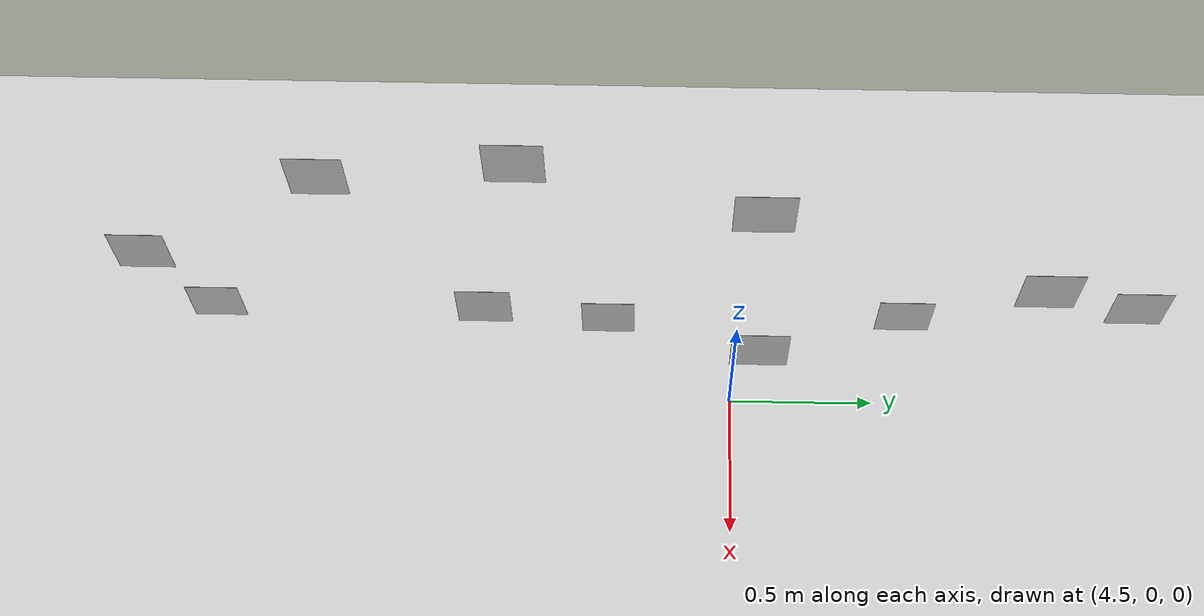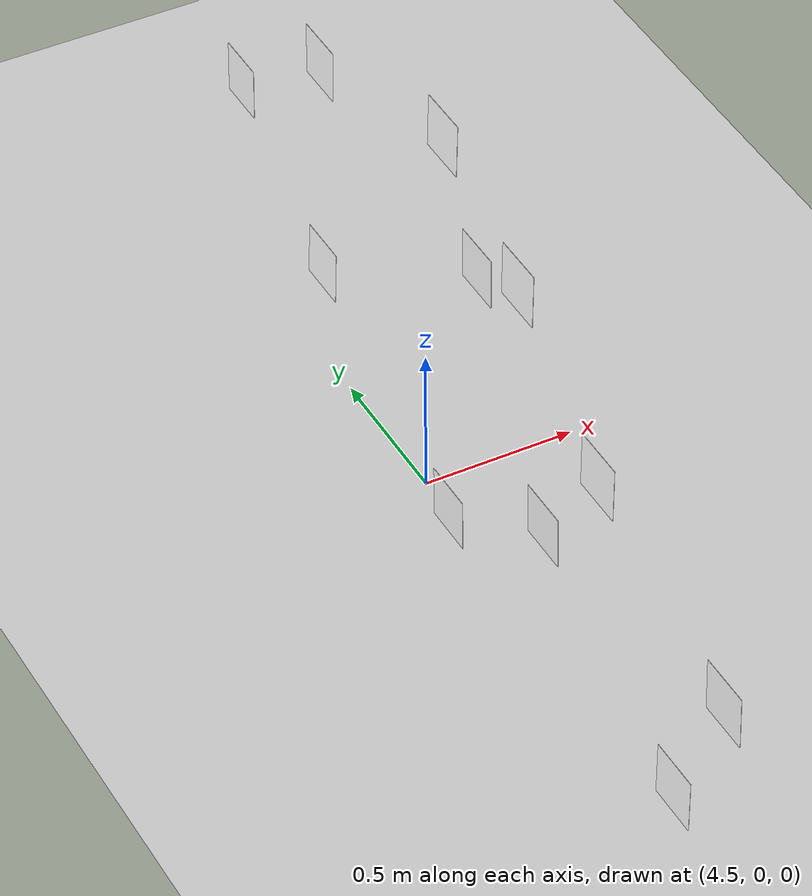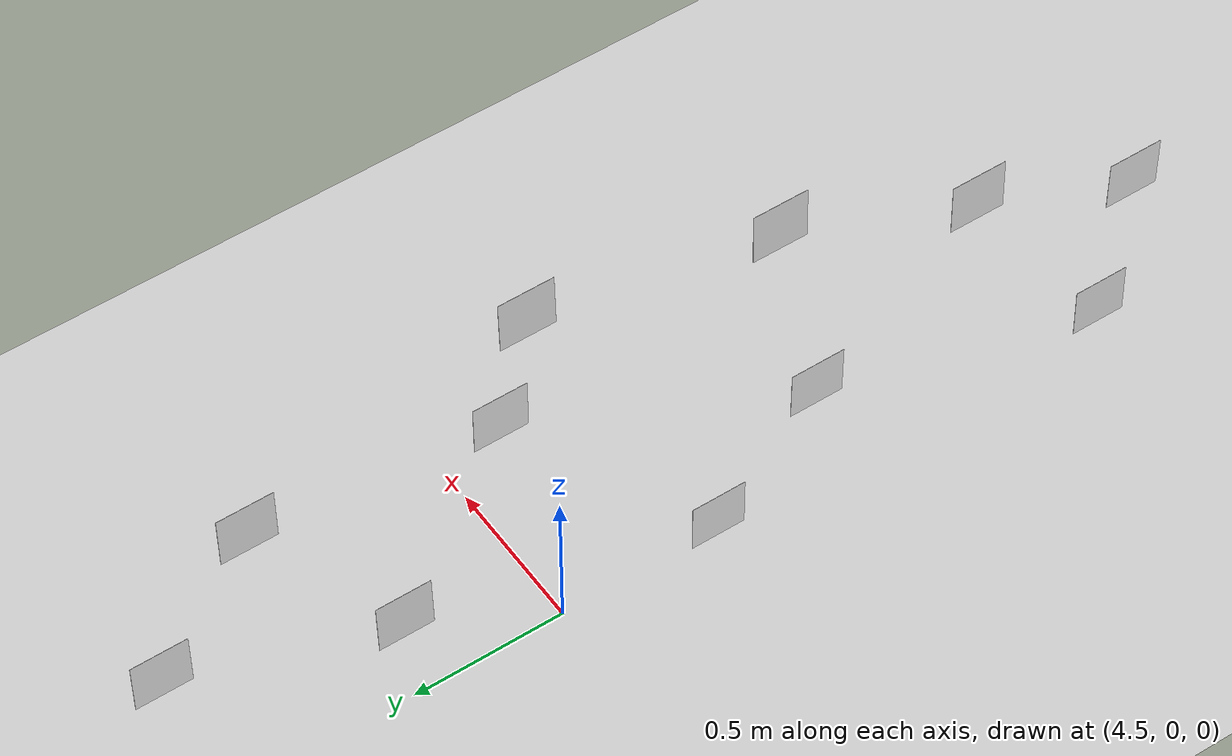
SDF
<sdf version="1.7">
 <world name="default">
  <physics name="normal" type="ode">
   <real_time_update_rate>1000</real_time_update_rate>
   <max_step_size>0.001</max_step_size>
   <real_time_factor>1</real_time_factor>
  </physics>
  <model name="ground_plane">
   <static>1</static>
   <link name="link">
    <collision name="collision">
     <geometry><plane><normal>0 0 1</normal><size>100 100</size></plane></geometry>
     <surface>
      <contact><collide_bitmask>65535</collide_bitmask></contact>
      <friction><ode><mu>100</mu><mu2>50</mu2></ode></friction>
     </surface>
    </collision>
    <visual name="visual">
     <cast_shadows>0</cast_shadows>
     <geometry><plane><normal>0 0 1</normal><size>100 100</size></plane></geometry>
     <material>
      <script><uri>file://media/materials/scripts/gazebo.material</uri><name>Gazebo/Grey</name></script>
     </material>
    </visual>
   </link>
  </model>
  <light name="sun" type="directional">
   <pose>0 0 10 0 -0 0</pose>
   <diffuse>0.8 0.8 0.8 1</diffuse>
   <specular>0.2 0.2 0.2 1</specular>
   <attenuation>
    <range>1000</range>
    <constant>0.9</constant>
    <linear>0.01</linear>
    <quadratic>0.001</quadratic>
   </attenuation>
   <direction>-0.5 0.1 -0.9</direction>
   <spot><inner_angle>0</inner_angle><outer_angle>0</outer_angle><falloff>0</falloff></spot>
  </light>
  <gravity>0 0 -9.8</gravity>
  <magnetic_field>6e-06 2.3e-05 -4.2e-05</magnetic_field>
  <atmosphere type="adiabatic"/>
  <scene><ambient>0.4 0.4 0.4 1</ambient><background>0.7 0.7 0.7 1</background><shadows>1</shadows></scene>
  <spherical_coordinates>
   <surface_model>EARTH_WGS84</surface_model>
   <latitude_deg>0</latitude_deg>
   <longitude_deg>0</longitude_deg>
   <elevation>0</elevation>
   <heading_deg>0</heading_deg>
  </spherical_coordinates>
  <model name="marker_0">
   <link name="marker">
    <visual name="visual">
     <geometry><box><size>0.1778 0.1778 1e-05</size></box></geometry>
     <material>
      <script>
       <uri>model://marker_0/materials/scripts</uri>
       <uri>model://marker_0/materials/textures</uri>
       <name>ArucoVisualMarker0/Marker</name>
      </script>
      <ambient>1 1 1 1</ambient>
      <diffuse>1 1 1 1</diffuse>
      <specular>0 0 0 1</specular>
      <emissive>1 1 1 0</emissive>
      <shader type="vertex"><normal_map>__default__</normal_map></shader>
     </material>
    </visual>
    <collision name="collision"><geometry><box><size>0.1778 0.1778 1e-05</size></box></geometry></collision>
   </link>
   <link name="marker_pad">
    <pose relative_to="marker">0 0 -0.001 0 -0 0</pose>
    <visual name="visual">
     <geometry><box><size>0.1778 0.1778 1e-05</size></box></geometry>
     <material>
      <lighting>1</lighting>
      <script><uri>file://media/materials/scripts/gazebo.material</uri><name>Gazebo/White</name></script>
      <ambient>0.3 0.3 0.3 1</ambient>
      <diffuse>0.7 0.7 0.7 1</diffuse>
      <specular>0.01 0.01 0.01 1</specular>
      <emissive>1 1 1 0</emissive>
      <shader type="vertex"><normal_map>__default__</normal_map></shader>
     </material>
    </visual>
    <collision name="collision"><geometry><box><size>0.1778 0.1778 1e-05</size></box></geometry></collision>
   </link>
   <joint name="marker_JOINT_marker_pad" type="revolute">
    <parent>marker</parent>
    <child>marker_pad</child>
    <axis>
     <xyz>0 0 1</xyz>
     <limit><upper>0</upper><lower>0</lower></limit>
     <dynamics><spring_reference>0</spring_reference><spring_stiffness>0</spring_stiffness></dynamics>
    </axis>
   </joint>
   <static>1</static>
   <pose>4.57715 0.036051 1.27944 0 -1.5429 0</pose>
  </model>
  <model name="marker_1">
   <link name="marker">
    <visual name="visual">
     <geometry><box><size>0.1778 0.1778 1e-05</size></box></geometry>
     <material>
      <script>
       <uri>model://marker_1/materials/scripts</uri>
       <uri>model://marker_1/materials/textures</uri>
       <name>ArucoVisualMarker1/Marker</name>
      </script>
      <ambient>1 1 1 1</ambient>
      <diffuse>1 1 1 1</diffuse>
      <specular>0 0 0 1</specular>
      <emissive>1 1 1 0</emissive>
      <shader type="vertex"><normal_map>__default__</normal_map></shader>
     </material>
    </visual>
    <collision name="collision"><geometry><box><size>0.1778 0.1778 1e-05</size></box></geometry></collision>
   </link>
   <link name="marker_pad">
    <pose relative_to="marker">0 0 -0.001 0 -0 0</pose>
    <visual name="visual">
     <geometry><box><size>0.1778 0.1778 1e-05</size></box></geometry>
     <material>
      <lighting>1</lighting>
      <script><uri>file://media/materials/scripts/gazebo.material</uri><name>Gazebo/White</name></script>
      <ambient>0.3 0.3 0.3 1</ambient>
      <diffuse>0.7 0.7 0.7 1</diffuse>
      <specular>0.01 0.01 0.01 1</specular>
      <emissive>1 1 1 0</emissive>
      <shader type="vertex"><normal_map>__default__</normal_map></shader>
     </material>
    </visual>
    <collision name="collision"><geometry><box><size>0.1778 0.1778 1e-05</size></box></geometry></collision>
   </link>
   <joint name="marker_JOINT_marker_pad" type="revolute">
    <parent>marker</parent>
    <child>marker_pad</child>
    <axis>
     <xyz>0 0 1</xyz>
     <limit><upper>0</upper><lower>0</lower></limit>
     <dynamics><spring_reference>0</spring_reference><spring_stiffness>0</spring_stiffness></dynamics>
    </axis>
   </joint>
   <static>1</static>
   <pose>4.43161 -0.678154 1.29908 0 -1.55273 0</pose>
  </model>
  <model name="marker_2">
   <link name="marker">
    <visual name="visual">
     <geometry><box><size>0.1778 0.1778 1e-05</size></box></geometry>
     <material>
      <script>
       <uri>model://marker_2/materials/scripts</uri>
       <uri>model://marker_2/materials/textures</uri>
       <name>ArucoVisualMarker2/Marker</name>
      </script>
      <ambient>1 1 1 1</ambient>
      <diffuse>1 1 1 1</diffuse>
      <specular>0 0 0 1</specular>
      <emissive>1 1 1 0</emissive>
      <shader type="vertex"><normal_map>__default__</normal_map></shader>
     </material>
    </visual>
    <collision name="collision"><geometry><box><size>0.1778 0.1778 1e-05</size></box></geometry></collision>
   </link>
   <link name="marker_pad">
    <pose relative_to="marker">0 0 -0.001 0 -0 0</pose>
    <visual name="visual">
     <geometry><box><size>0.1778 0.1778 1e-05</size></box></geometry>
     <material>
      <lighting>1</lighting>
      <script><uri>file://media/materials/scripts/gazebo.material</uri><name>Gazebo/White</name></script>
      <ambient>0.3 0.3 0.3 1</ambient>
      <diffuse>0.7 0.7 0.7 1</diffuse>
      <specular>0.01 0.01 0.01 1</specular>
      <emissive>1 1 1 0</emissive>
      <shader type="vertex"><normal_map>__default__</normal_map></shader>
     </material>
    </visual>
    <collision name="collision"><geometry><box><size>0.1778 0.1778 1e-05</size></box></geometry></collision>
   </link>
   <joint name="marker_JOINT_marker_pad" type="revolute">
    <parent>marker</parent>
    <child>marker_pad</child>
    <axis>
     <xyz>0 0 1</xyz>
     <limit><upper>0</upper><lower>0</lower></limit>
     <dynamics><spring_reference>0</spring_reference><spring_stiffness>0</spring_stiffness></dynamics>
    </axis>
   </joint>
   <static>1</static>
   <pose>4.70082 0.055109 0.725616 3.14159 -1.56677 3.14159</pose>
  </model>
  <model name="marker_4">
   <link name="marker">
    <visual name="visual">
     <geometry><box><size>0.1778 0.1778 1e-05</size></box></geometry>
     <material>
      <script>
       <uri>model://marker_4/materials/scripts</uri>
       <uri>model://marker_4/materials/textures</uri>
       <name>ArucoVisualMarker4/Marker</name>
      </script>
      <ambient>1 1 1 1</ambient>
      <diffuse>1 1 1 1</diffuse>
      <specular>0 0 0 1</specular>
      <emissive>1 1 1 0</emissive>
      <shader type="vertex"><normal_map>__default__</normal_map></shader>
     </material>
    </visual>
    <collision name="collision"><geometry><box><size>0.1778 0.1778 1e-05</size></box></geometry></collision>
   </link>
   <link name="marker_pad">
    <pose relative_to="marker">0 0 -0.001 0 -0 0</pose>
    <visual name="visual">
     <geometry><box><size>0.1778 0.1778 1e-05</size></box></geometry>
     <material>
      <lighting>1</lighting>
      <script><uri>file://media/materials/scripts/gazebo.material</uri><name>Gazebo/White</name></script>
      <ambient>0.3 0.3 0.3 1</ambient>
      <diffuse>0.7 0.7 0.7 1</diffuse>
      <specular>0.01 0.01 0.01 1</specular>
      <emissive>1 1 1 0</emissive>
      <shader type="vertex"><normal_map>__default__</normal_map></shader>
     </material>
    </visual>
    <collision name="collision"><geometry><box><size>0.1778 0.1778 1e-05</size></box></geometry></collision>
   </link>
   <joint name="marker_JOINT_marker_pad" type="revolute">
    <parent>marker</parent>
    <child>marker_pad</child>
    <axis>
     <xyz>0 0 1</xyz>
     <limit><upper>0</upper><lower>0</lower></limit>
     <dynamics><spring_reference>0</spring_reference><spring_stiffness>0</spring_stiffness></dynamics>
    </axis>
   </joint>
   <static>1</static>
   <pose>4.61455 0.9017 0.956564 0 -1.55415 0</pose>
  </model>
  <model name="marker_5">
   <link name="marker">
    <visual name="visual">
     <geometry><box><size>0.1778 0.1778 1e-05</size></box></geometry>
     <material>
      <script>
       <uri>model://marker_5/materials/scripts</uri>
       <uri>model://marker_5/materials/textures</uri>
       <name>ArucoVisualMarker5/Marker</name>
      </script>
      <ambient>1 1 1 1</ambient>
      <diffuse>1 1 1 1</diffuse>
      <specular>0 0 0 1</specular>
      <emissive>1 1 1 0</emissive>
      <shader type="vertex"><normal_map>__default__</normal_map></shader>
     </material>
    </visual>
    <collision name="collision"><geometry><box><size>0.1778 0.1778 1e-05</size></box></geometry></collision>
   </link>
   <link name="marker_pad">
    <pose relative_to="marker">0 0 -0.001 0 -0 0</pose>
    <visual name="visual">
     <geometry><box><size>0.1778 0.1778 1e-05</size></box></geometry>
     <material>
      <lighting>1</lighting>
      <script><uri>file://media/materials/scripts/gazebo.material</uri><name>Gazebo/White</name></script>
      <ambient>0.3 0.3 0.3 1</ambient>
      <diffuse>0.7 0.7 0.7 1</diffuse>
      <specular>0.01 0.01 0.01 1</specular>
      <emissive>1 1 1 0</emissive>
      <shader type="vertex"><normal_map>__default__</normal_map></shader>
     </material>
    </visual>
    <collision name="collision"><geometry><box><size>0.1778 0.1778 1e-05</size></box></geometry></collision>
   </link>
   <joint name="marker_JOINT_marker_pad" type="revolute">
    <parent>marker</parent>
    <child>marker_pad</child>
    <axis>
     <xyz>0 0 1</xyz>
     <limit><upper>0</upper><lower>0</lower></limit>
     <dynamics><spring_reference>0</spring_reference><spring_stiffness>0</spring_stiffness></dynamics>
    </axis>
   </joint>
   <static>1</static>
   <pose>4.51148 1.24921 0.695473 0 -1.55868 0</pose>
  </model>
  <model name="marker_6">
   <link name="marker">
    <visual name="visual">
     <geometry><box><size>0.1778 0.1778 1e-05</size></box></geometry>
     <material>
      <script>
       <uri>model://marker_6/materials/scripts</uri>
       <uri>model://marker_6/materials/textures</uri>
       <name>ArucoVisualMarker6/Marker</name>
      </script>
      <ambient>1 1 1 1</ambient>
      <diffuse>1 1 1 1</diffuse>
      <specular>0 0 0 1</specular>
      <emissive>1 1 1 0</emissive>
      <shader type="vertex"><normal_map>__default__</normal_map></shader>
     </material>
    </visual>
    <collision name="collision"><geometry><box><size>0.1778 0.1778 1e-05</size></box></geometry></collision>
   </link>
   <link name="marker_pad">
    <pose relative_to="marker">0 0 -0.001 0 -0 0</pose>
    <visual name="visual">
     <geometry><box><size>0.1778 0.1778 1e-05</size></box></geometry>
     <material>
      <lighting>1</lighting>
      <script><uri>file://media/materials/scripts/gazebo.material</uri><name>Gazebo/White</name></script>
      <ambient>0.3 0.3 0.3 1</ambient>
      <diffuse>0.7 0.7 0.7 1</diffuse>
      <specular>0.01 0.01 0.01 1</specular>
      <emissive>1 1 1 0</emissive>
      <shader type="vertex"><normal_map>__default__</normal_map></shader>
     </material>
    </visual>
    <collision name="collision"><geometry><box><size>0.1778 0.1778 1e-05</size></box></geometry></collision>
   </link>
   <joint name="marker_JOINT_marker_pad" type="revolute">
    <parent>marker</parent>
    <child>marker_pad</child>
    <axis>
     <xyz>0 0 1</xyz>
     <limit><upper>0</upper><lower>0</lower></limit>
     <dynamics><spring_reference>0</spring_reference><spring_stiffness>0</spring_stiffness></dynamics>
    </axis>
   </joint>
   <static>1</static>
   <pose>4.3318 -1.75962 0.344984 0 -1.56189 0</pose>
  </model>
  <model name="marker_7">
   <link name="marker">
    <visual name="visual">
     <geometry><box><size>0.1778 0.1778 1e-05</size></box></geometry>
     <material>
      <script>
       <uri>model://marker_7/materials/scripts</uri>
       <uri>model://marker_7/materials/textures</uri>
       <name>ArucoVisualMarker7/Marker</name>
      </script>
      <ambient>1 1 1 1</ambient>
      <diffuse>1 1 1 1</diffuse>
      <specular>0 0 0 1</specular>
      <emissive>1 1 1 0</emissive>
      <shader type="vertex"><normal_map>__default__</normal_map></shader>
     </material>
    </visual>
    <collision name="collision"><geometry><box><size>0.1778 0.1778 1e-05</size></box></geometry></collision>
   </link>
   <link name="marker_pad">
    <pose relative_to="marker">0 0 -0.001 0 -0 0</pose>
    <visual name="visual">
     <geometry><box><size>0.1778 0.1778 1e-05</size></box></geometry>
     <material>
      <lighting>1</lighting>
      <script><uri>file://media/materials/scripts/gazebo.material</uri><name>Gazebo/White</name></script>
      <ambient>0.3 0.3 0.3 1</ambient>
      <diffuse>0.7 0.7 0.7 1</diffuse>
      <specular>0.01 0.01 0.01 1</specular>
      <emissive>1 1 1 0</emissive>
      <shader type="vertex"><normal_map>__default__</normal_map></shader>
     </material>
    </visual>
    <collision name="collision"><geometry><box><size>0.1778 0.1778 1e-05</size></box></geometry></collision>
   </link>
   <joint name="marker_JOINT_marker_pad" type="revolute">
    <parent>marker</parent>
    <child>marker_pad</child>
    <axis>
     <xyz>0 0 1</xyz>
     <limit><upper>0</upper><lower>0</lower></limit>
     <dynamics><spring_reference>0</spring_reference><spring_stiffness>0</spring_stiffness></dynamics>
    </axis>
   </joint>
   <static>1</static>
   <pose>4.43842 -0.8271 0.518121 3.14159 -1.55643 3.14159</pose>
  </model>
  <model name="marker_3">
   <link name="marker">
    <visual name="visual">
     <geometry><box><size>0.1778 0.1778 1e-05</size></box></geometry>
     <material>
      <script>
       <uri>model://marker_3/materials/scripts</uri>
       <uri>model://marker_3/materials/textures</uri>
       <name>ArucoVisualMarker3/Marker</name>
      </script>
      <ambient>1 1 1 1</ambient>
      <diffuse>1 1 1 1</diffuse>
      <specular>0 0 0 1</specular>
      <emissive>1 1 1 0</emissive>
      <shader type="vertex"><normal_map>__default__</normal_map></shader>
     </material>
    </visual>
    <collision name="collision"><geometry><box><size>0.1778 0.1778 1e-05</size></box></geometry></collision>
   </link>
   <link name="marker_pad">
    <pose relative_to="marker">0 0 -0.001 0 -0 0</pose>
    <visual name="visual">
     <geometry><box><size>0.1778 0.1778 1e-05</size></box></geometry>
     <material>
      <lighting>1</lighting>
      <script><uri>file://media/materials/scripts/gazebo.material</uri><name>Gazebo/White</name></script>
      <ambient>0.3 0.3 0.3 1</ambient>
      <diffuse>0.7 0.7 0.7 1</diffuse>
      <specular>0.01 0.01 0.01 1</specular>
      <emissive>1 1 1 0</emissive>
      <shader type="vertex"><normal_map>__default__</normal_map></shader>
     </material>
    </visual>
    <collision name="collision"><geometry><box><size>0.1778 0.1778 1e-05</size></box></geometry></collision>
   </link>
   <joint name="marker_JOINT_marker_pad" type="revolute">
    <parent>marker</parent>
    <child>marker_pad</child>
    <axis>
     <xyz>0 0 1</xyz>
     <limit><upper>0</upper><lower>0</lower></limit>
     <dynamics><spring_reference>0</spring_reference><spring_stiffness>0</spring_stiffness></dynamics>
    </axis>
   </joint>
   <static>1</static>
   <pose>4.34665 -1.28487 1.10027 0 -1.56021 0</pose>
  </model>
  <model name="marker_30">
   <link name="marker">
    <visual name="visual">
     <geometry><box><size>0.1778 0.1778 1e-05</size></box></geometry>
     <material>
      <script>
       <uri>model://marker_30/materials/scripts</uri>
       <uri>model://marker_30/materials/textures</uri>
       <name>ArucoVisualMarker30/Marker</name>
      </script>
      <ambient>1 1 1 1</ambient>
      <diffuse>1 1 1 1</diffuse>
      <specular>0 0 0 1</specular>
      <emissive>1 1 1 0</emissive>
      <shader type="vertex"><normal_map>__default__</normal_map></shader>
     </material>
    </visual>
    <collision name="collision"><geometry><box><size>0.1778 0.1778 1e-05</size></box></geometry></collision>
   </link>
   <link name="marker_pad">
    <pose relative_to="marker">0 0 -0.001 0 -0 0</pose>
    <visual name="visual">
     <geometry><box><size>0.1778 0.1778 1e-05</size></box></geometry>
     <material>
      <lighting>1</lighting>
      <script><uri>file://media/materials/scripts/gazebo.material</uri><name>Gazebo/White</name></script>
      <ambient>0.3 0.3 0.3 1</ambient>
      <diffuse>0.7 0.7 0.7 1</diffuse>
      <specular>0.01 0.01 0.01 1</specular>
      <emissive>1 1 1 0</emissive>
      <shader type="vertex"><normal_map>__default__</normal_map></shader>
     </material>
    </visual>
    <collision name="collision"><geometry><box><size>0.1778 0.1778 1e-05</size></box></geometry></collision>
   </link>
   <joint name="marker_JOINT_marker_pad" type="revolute">
    <parent>marker</parent>
    <child>marker_pad</child>
    <axis>
     <xyz>0 0 1</xyz>
     <limit><upper>0</upper><lower>0</lower></limit>
     <dynamics><spring_reference>0</spring_reference><spring_stiffness>0</spring_stiffness></dynamics>
    </axis>
   </joint>
   <static>1</static>
   <pose>4.39593 -1.89451 0.751535 3.14159 -1.55813 3.14159</pose>
  </model>
  <model name="marker_21">
   <link name="marker">
    <visual name="visual">
     <geometry><box><size>0.1778 0.1778 1e-05</size></box></geometry>
     <material>
      <script>
       <uri>model://marker_21/materials/scripts</uri>
       <uri>model://marker_21/materials/textures</uri>
       <name>ArucoVisualMarker21/Marker</name>
      </script>
      <ambient>1 1 1 1</ambient>
      <diffuse>1 1 1 1</diffuse>
      <specular>0 0 0 1</specular>
      <emissive>1 1 1 0</emissive>
      <shader type="vertex"><normal_map>__default__</normal_map></shader>
     </material>
    </visual>
    <collision name="collision"><geometry><box><size>0.1778 0.1778 1e-05</size></box></geometry></collision>
   </link>
   <link name="marker_pad">
    <pose relative_to="marker">0 0 -0.001 0 -0 0</pose>
    <visual name="visual">
     <geometry><box><size>0.1778 0.1778 1e-05</size></box></geometry>
     <material>
      <lighting>1</lighting>
      <script><uri>file://media/materials/scripts/gazebo.material</uri><name>Gazebo/White</name></script>
      <ambient>0.3 0.3 0.3 1</ambient>
      <diffuse>0.7 0.7 0.7 1</diffuse>
      <specular>0.01 0.01 0.01 1</specular>
      <emissive>1 1 1 0</emissive>
      <shader type="vertex"><normal_map>__default__</normal_map></shader>
     </material>
    </visual>
    <collision name="collision"><geometry><box><size>0.1778 0.1778 1e-05</size></box></geometry></collision>
   </link>
   <joint name="marker_JOINT_marker_pad" type="revolute">
    <parent>marker</parent>
    <child>marker_pad</child>
    <axis>
     <xyz>0 0 1</xyz>
     <limit><upper>0</upper><lower>0</lower></limit>
     <dynamics><spring_reference>0</spring_reference><spring_stiffness>0</spring_stiffness></dynamics>
    </axis>
   </joint>
   <static>1</static>
   <pose>4.43451 0.548311 0.494559 0 -1.54006 0</pose>
  </model>
  <model name="marker_15">
   <link name="marker">
    <visual name="visual">
     <geometry><box><size>0.1778 0.1778 1e-05</size></box></geometry>
     <material>
      <script>
       <uri>model://marker_15/materials/scripts</uri>
       <uri>model://marker_15/materials/textures</uri>
       <name>ArucoVisualMarker15/Marker</name>
      </script>
      <ambient>1 1 1 1</ambient>
      <diffuse>1 1 1 1</diffuse>
      <specular>0 0 0 1</specular>
      <emissive>1 1 1 0</emissive>
      <shader type="vertex"><normal_map>__default__</normal_map></shader>
     </material>
    </visual>
    <collision name="collision"><geometry><box><size>0.1778 0.1778 1e-05</size></box></geometry></collision>
   </link>
   <link name="marker_pad">
    <pose relative_to="marker">0 0 -0.001 0 -0 0</pose>
    <visual name="visual">
     <geometry><box><size>0.1778 0.1778 1e-05</size></box></geometry>
     <material>
      <lighting>1</lighting>
      <script><uri>file://media/materials/scripts/gazebo.material</uri><name>Gazebo/White</name></script>
      <ambient>0.3 0.3 0.3 1</ambient>
      <diffuse>0.7 0.7 0.7 1</diffuse>
      <specular>0.01 0.01 0.01 1</specular>
      <emissive>1 1 1 0</emissive>
      <shader type="vertex"><normal_map>__default__</normal_map></shader>
     </material>
    </visual>
    <collision name="collision"><geometry><box><size>0.1778 0.1778 1e-05</size></box></geometry></collision>
   </link>
   <joint name="marker_JOINT_marker_pad" type="revolute">
    <parent>marker</parent>
    <child>marker_pad</child>
    <axis>
     <xyz>0 0 1</xyz>
     <limit><upper>0</upper><lower>0</lower></limit>
     <dynamics><spring_reference>0</spring_reference><spring_stiffness>0</spring_stiffness></dynamics>
    </axis>
   </joint>
   <static>1</static>
   <pose>4.34644 -0.42741 0.304864 3.14159 -1.56162 3.14159</pose>
  </model>
 </world>
</sdf>
